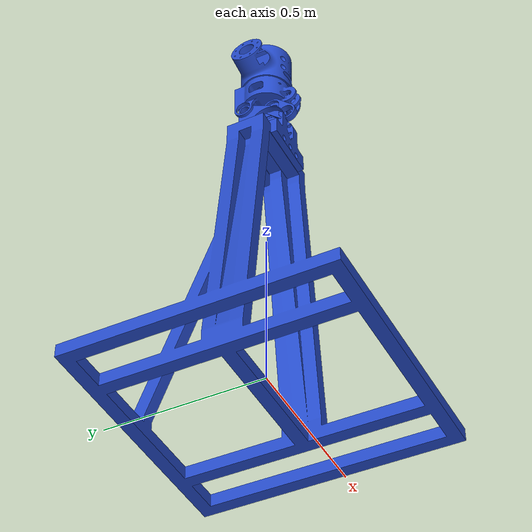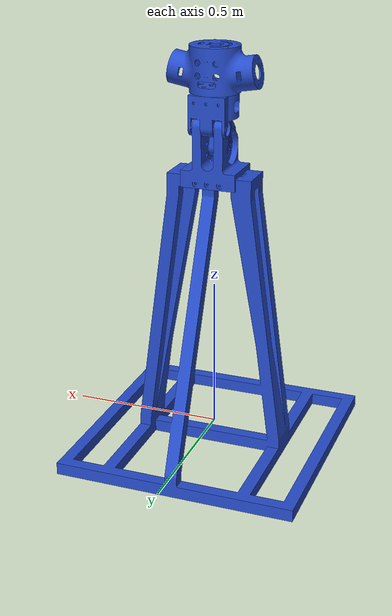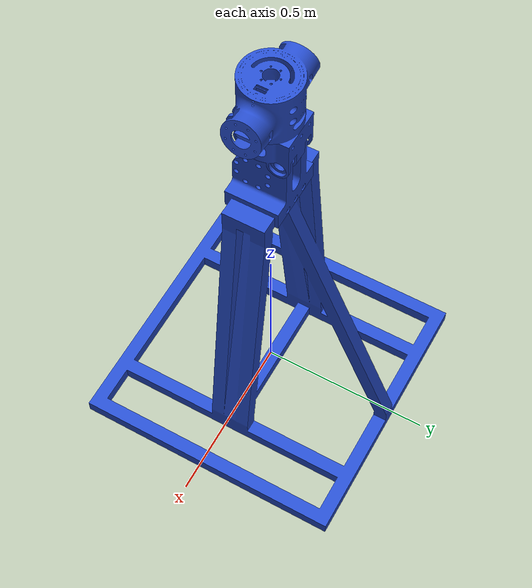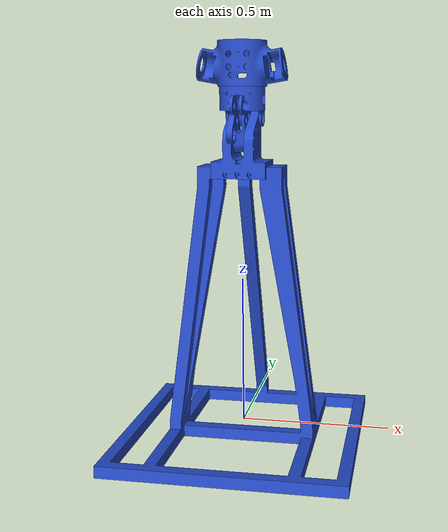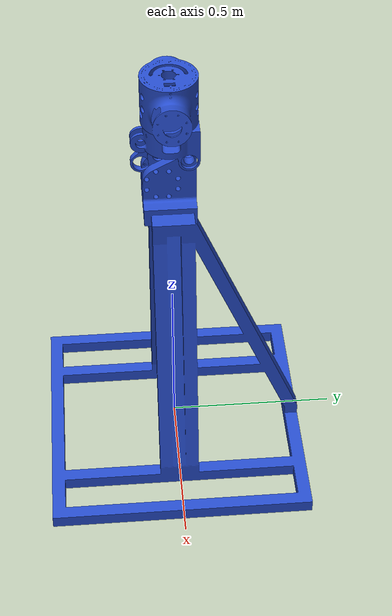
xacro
<?xml version="1.0"?>
<robot xmlns:xacro="http://www.ros.org/wiki/xacro">

  <!-- Virtual Link-->
  <link name="base_link"/>

  <!-- Links -->
  <link name="BASE_1">
    <visual name="BASE_1">
      <origin xyz="0.860 -0.090 0.060" rpy="1.570796 0.000 -1.570796"/>
      <geometry>
        <mesh filename="package://kist_robot/meshes/torso/BASE_1.stl" scale="0.001 0.001 0.001"/>
      </geometry>
      <material name="blue"/>
    </visual>

    <collision name="BASE_1">
      <origin xyz="0.860 -0.090 0.060" rpy="1.570796 0.000 -1.570796"/>
      <geometry>
        <mesh filename="package://kist_robot/meshes/torso/BASE_1.stl" scale="0.001 0.001 0.001"/>
      </geometry>
    </collision>
  </link>

  <link name="BASE_2">
    <visual name="BASE_2">
      <origin xyz="0.000 0.000 0.000" rpy="0.000 0.000 0.000"/>
      <geometry>
        <mesh filename="package://kist_robot/meshes/torso/BASE_2.stl" scale="0.001 0.001 0.001"/>
      </geometry>
      <material name="blue"/>
    </visual>

    <collision name="BASE_2">
      <origin xyz="0.000 0.000 0.000" rpy="0.000 0.000 0.000"/>
      <geometry>
        <mesh filename="package://kist_robot/meshes/torso/BASE_2.stl" scale="0.001 0.001 0.001"/>
      </geometry>
    </collision>
  </link>

  <link name="BASE_JOINT_1">
    <visual name="BASE_JOINT_1_visual">
      <origin xyz="-0.768 -0.577 -0.020" rpy="-0.670849 1.570796 0.000"/>
      <geometry>
        <mesh filename="package://kist_robot/meshes/torso/BASE_JOINT_1.stl" scale="0.001 0.001 0.001"/>
      </geometry>
      <material name="blue"/>
    </visual>

    <collision name="BASE_JOINT_1_collision">
      <origin xyz="-0.768 -0.577 -0.020" rpy="-0.670849 1.570796 0.000"/>
      <geometry>
        <mesh filename="package://kist_robot/meshes/torso/BASE_JOINT_1.stl" scale="0.001 0.001 0.001"/>
      </geometry>
    </collision>
  </link>

  <link name="DOWNBODY">
    <visual name="DOWNBODY_visual">
      <origin xyz="-1.040 -0.050 -0.050" rpy="0.000 1.570796 0.000"/>
      <geometry>
        <mesh filename="package://kist_robot/meshes/torso/DOWNBODY.stl" scale="0.001 0.001 0.001"/>
      </geometry>
      <material name="blue"/>
    </visual>

    <collision name="DOWNBODY_collision">
      <origin xyz="-1.040 -0.050 -0.050" rpy="0.000 1.570796 0.000"/>
      <geometry>
        <mesh filename="package://kist_robot/meshes/torso/DOWNBODY.stl" scale="0.001 0.001 0.001"/>
      </geometry>
    </collision>
  </link>

  <link name="BASE_JOINT_2">
    <visual name="BASE_JOINT_2_visual">
      <origin xyz="-0.723 -0.807 0.010" rpy="-2.375375 -1.570796 0.000"/>
      <geometry>
        <mesh filename="package://kist_robot/meshes/torso/BASE_JOINT_2.stl" scale="0.001 0.001 0.001"/>
      </geometry>
      <material name="blue"/>
    </visual>

    <collision name="BASE_JOINT_2_collision">
      <origin xyz="-0.723 -0.807 0.010" rpy="-2.375375 -1.570796 0.000"/>
      <geometry>
        <mesh filename="package://kist_robot/meshes/torso/BASE_JOINT_2.stl" scale="0.001 0.001 0.001"/>
      </geometry>
    </collision>
  </link>

  <link name="UPBODY">
    <visual name="UPBODY_visual">
      <origin xyz="0.000 0.000 1.150" rpy="3.141593 0.000 3.141593"/>
      <geometry>
        <mesh filename="package://kist_robot/meshes/torso/UPBODY.stl" scale="0.001 0.001 0.001"/>
      </geometry>
      <material name="blue"/>
    </visual>

    <collision name="UPBODY_collision">
      <origin xyz="0.000 0.000 1.150" rpy="3.141593 0.000 3.141593"/>
      <geometry>
        <mesh filename="package://kist_robot/meshes/torso/UPBODY.stl" scale="0.001 0.001 0.001"/>
      </geometry>
    </collision>
  </link>

  <!-- Joints -->
  <joint name="base_joint" type="fixed">
    <parent link="base_link"/>
    <child link="BASE_2"/>
    <origin xyz="0 0 0" rpy="0 0 0"/>
  </joint>

  <joint name="body_1" type="continuous">
    <origin xyz="0.110 -0.050 -0.050" rpy="3.141593 1.570796 0.000"/>
    <parent link="DOWNBODY"/>
    <child link="UPBODY"/>
    <axis xyz="0.0 0.0 1.0"/>
  </joint>

  <joint name="BASE_body" type="continuous">
    <origin xyz="-0.050 0.050 1.040" rpy="0.000 -1.570796 0.000"/>
    <parent link="BASE_2"/>
    <child link="DOWNBODY"/>
    <axis xyz="0.0 0.0 1.0"/>
  </joint>

  <joint name="BASE_joint_1" type="continuous">
    <origin xyz="-0.021 -0.025 0.960" rpy="0.000 -1.570796 0.000"/>
    <parent link="BASE_2"/>
    <child link="BASE_JOINT_1"/>
    <axis xyz="0.0 0.0 1.0"/>
  </joint>

  <joint name="BASE_joint_2" type="revolute">
    <origin xyz="0.075 -0.009 -0.010" rpy="0.000 0.000 -0.000"/>
    <parent link="BASE_JOINT_1"/>
    <child link="BASE_JOINT_2"/>
    <axis xyz="0.0 0.0 1.0"/>
    <mimic joint="BASE_joint_1" multiplier="1.0" offset="0.0"/>
    <limit lower="-3.14159" upper="3.14159" effort="100" velocity="5.0"/>
  </joint>

  <joint name="BASE_fixed" type="fixed">
    <origin xyz="-0.090 -0.060 0.863" rpy="-1.570796 1.570796 0.000"/>
    <parent link="BASE_2"/>
    <child link="BASE_1"/>
  </joint>
</robot>
